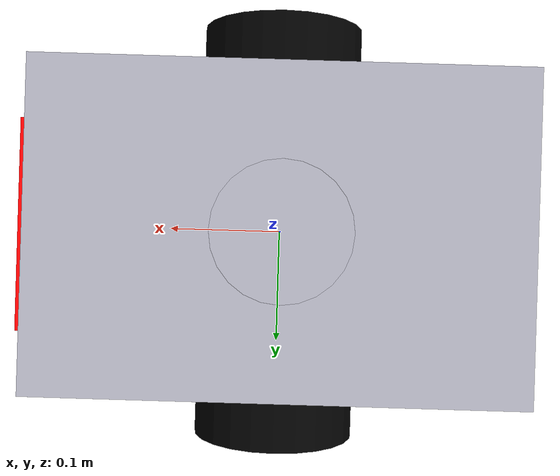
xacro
<?xml version="1.0"?>
<robot xmlns:xacro="http://www.ros.org/wiki/xacro" name="gpu_slam_bot">

  <!-- Robot parameters -->
  <xacro:property name="base_width" value="0.30"/>
  <xacro:property name="base_length" value="0.45"/>
  <xacro:property name="base_height" value="0.08"/>
  <xacro:property name="wheel_radius" value="0.08"/>
  <xacro:property name="wheel_width" value="0.06"/>
  <xacro:property name="wheel_separation" value="0.35"/>
  <xacro:property name="caster_radius" value="0.03"/>

  <!-- Materials -->
  <material name="metallic_gray"><color rgba="0.7 0.7 0.75 1"/></material>
  <material name="wheel_black"><color rgba="0 0 0 1"/></material>
  <material name="stripe_green"><color rgba="0 1 0 1"/></material>
  <material name="pusher_red"><color rgba="1 0 0 1"/></material>

  <!-- Base link -->
  <link name="base_link">
    <visual>
      <origin xyz="0 0 0" rpy="0 0 0"/>
      <geometry>
        <box size="${base_length} ${base_width} ${base_height}"/>
      </geometry>
      <material name="metallic_gray"/>
    </visual>
    <collision>
      <origin xyz="0 0 0" rpy="0 0 0"/>
      <geometry>
        <box size="${base_length} ${base_width} ${base_height}"/>
      </geometry>
    </collision>
    <inertial>
      <origin xyz="0 0 0"/>
      <mass value="3.0"/>
      <inertia ixx="${(1/12)*3.0*(base_width*base_width + base_height*base_height)}"
               iyy="${(1/12)*3.0*(base_length*base_length + base_height*base_height)}"
               izz="${(1/12)*3.0*(base_length*base_length + base_width*base_width)}"
               ixy="0" ixz="0" iyz="0"/>
    </inertial>
  </link>

  <!-- Lidar -->
  <link name="lidar_link">
    <visual>
      <origin xyz="0 0 0.03" rpy="0 0 0"/>
      <geometry>
        <cylinder length="0.06" radius="0.055"/>
      </geometry>
      <material name="metallic_gray"/>
    </visual>
    <collision>
      <origin xyz="0 0 0.03" rpy="0 0 0"/>
      <geometry>
        <cylinder length="0.06" radius="0.055"/>
      </geometry>
    </collision>
    <inertial>
      <origin xyz="0 0 0.03"/>
      <mass value="0.2"/>
      <inertia ixx="0.0004" iyy="0.0004" izz="0.0003" ixy="0" ixz="0" iyz="0"/>
    </inertial>
  </link>

  <joint name="lidar_joint" type="fixed">
    <parent link="base_link"/>
    <child link="lidar_link"/>
    <origin xyz="0 0 ${base_height/2 + 0.03}" rpy="0 0 0"/>
  </joint>

  <!-- Left Wheel - FIXED orientation and positioning -->
  <link name="wheel_left">
    <visual>
      <origin xyz="0 0 0" rpy="1.5708 0 0"/>
      <geometry>
        <cylinder length="${wheel_width}" radius="${wheel_radius}"/>
      </geometry>
      <material name="wheel_black"/>
    </visual>
    <collision>
      <origin xyz="0 0 0" rpy="1.5708 0 0"/>
      <geometry>
        <cylinder length="${wheel_width}" radius="${wheel_radius}"/>
      </geometry>
    </collision>
    <inertial>
      <origin xyz="0 0 0"/>
      <mass value="1.5"/>
      <inertia ixx="${(1/12)*1.5*(3*wheel_radius*wheel_radius + wheel_width*wheel_width)}"
               iyy="${0.5*1.5*wheel_radius*wheel_radius}"
               izz="${(1/12)*1.5*(3*wheel_radius*wheel_radius + wheel_width*wheel_width)}"
               ixy="0" ixz="0" iyz="0"/>
    </inertial>
  </link>

  <!-- Right Wheel - FIXED orientation and positioning -->
  <link name="wheel_right">
    <visual>
      <origin xyz="0 0 0" rpy="1.5708 0 0"/>
      <geometry>
        <cylinder length="${wheel_width}" radius="${wheel_radius}"/>
      </geometry>
      <material name="wheel_black"/>
    </visual>
    <collision>
      <origin xyz="0 0 0" rpy="1.5708 0 0"/>
      <geometry>
        <cylinder length="${wheel_width}" radius="${wheel_radius}"/>
      </geometry>
    </collision>
    <inertial>
      <origin xyz="0 0 0"/>
      <mass value="1.5"/>
      <inertia ixx="${(1/12)*1.5*(3*wheel_radius*wheel_radius + wheel_width*wheel_width)}"
               iyy="${0.5*1.5*wheel_radius*wheel_radius}"
               izz="${(1/12)*1.5*(3*wheel_radius*wheel_radius + wheel_width*wheel_width)}"
               ixy="0" ixz="0" iyz="0"/>
    </inertial>
  </link>

  <!-- Wheel joints - FIXED positioning and rotation axis -->
  <joint name="wheel_left_joint" type="continuous">
    <parent link="base_link"/>
    <child link="wheel_left"/>
    <origin xyz="0 ${wheel_separation/2} ${-wheel_radius}" rpy="0 0 0"/>
    <axis xyz="0 1 0"/>
    <dynamics damping="0.1" friction="0.1"/>
  </joint>

  <joint name="wheel_right_joint" type="continuous">
    <parent link="base_link"/>
    <child link="wheel_right"/>
    <origin xyz="0 ${-wheel_separation/2} ${-wheel_radius}" rpy="0 0 0"/>
    <axis xyz="0 1 0"/>
    <dynamics damping="0.1" friction="0.1"/>
  </joint>

  <!-- Caster - FIXED positioning -->
  <link name="caster_link">
    <visual>
      <origin xyz="0 0 0" rpy="0 0 0"/>
      <geometry><sphere radius="${caster_radius}"/></geometry>
      <material name="metallic_gray"/>
    </visual>
    <collision>
      <origin xyz="0 0 0" rpy="0 0 0"/>
      <geometry><sphere radius="${caster_radius}"/></geometry>
    </collision>
    <inertial>
      <origin xyz="0 0 0"/>
      <mass value="0.1"/>
      <inertia ixx="${(2/5)*0.1*caster_radius*caster_radius}"
               iyy="${(2/5)*0.1*caster_radius*caster_radius}"
               izz="${(2/5)*0.1*caster_radius*caster_radius}"
               ixy="0" ixz="0" iyz="0"/>
    </inertial>
  </link>

  <joint name="caster_joint" type="fixed">
    <parent link="base_link"/>
    <child link="caster_link"/>
    <origin xyz="-${base_length/2 - 0.05} 0 ${-wheel_radius + caster_radius - 0.005}" rpy="0 0 0"/>
  </joint>

  <!-- Front pusher -->
  <link name="front_pusher_link">
    <visual>
      <origin xyz="0 0 0" rpy="0 0 0"/>
      <geometry><box size="0.02 0.20 0.06"/></geometry>
      <material name="pusher_red"/>
    </visual>
    <collision>
      <origin xyz="0 0 0" rpy="0 0 0"/>
      <geometry><box size="0.02 0.20 0.06"/></geometry>
    </collision>
    <inertial>
      <origin xyz="0 0 0"/>
      <mass value="0.1"/>
      <inertia ixx="${(1/12)*0.1*(0.20*0.20 + 0.06*0.06)}"
               iyy="${(1/12)*0.1*(0.02*0.02 + 0.06*0.06)}"
               izz="${(1/12)*0.1*(0.02*0.02 + 0.20*0.20)}"
               ixy="0" ixz="0" iyz="0"/>
    </inertial>
  </link>

  <joint name="front_lifter_joint" type="prismatic">
    <parent link="base_link"/>
    <child link="front_pusher_link"/>
    <origin xyz="${base_length/2 + 0.01} 0 ${-base_height/2}" rpy="0 0 0"/>
    <axis xyz="0 0 1"/>
    <limit effort="10" velocity="0.1" lower="0.0" upper="0.25"/>
    <dynamics damping="2.0" friction="0.5"/>
  </joint>

  <!-- Gazebo diff_drive plugin -->
  <gazebo>
    <plugin name="diff_drive" filename="libgazebo_ros_diff_drive.so">
      <ros>
        <namespace>/</namespace>
      </ros>
      <update_rate>100</update_rate>
      <left_joint>wheel_left_joint</left_joint>
      <right_joint>wheel_right_joint</right_joint>
      <wheel_separation>${wheel_separation}</wheel_separation>
      <wheel_diameter>${2*wheel_radius}</wheel_diameter>
      <max_wheel_torque>50.0</max_wheel_torque>
      <max_wheel_acceleration>10.0</max_wheel_acceleration>
      <command_topic>cmd_vel</command_topic>
      <odometry_topic>odom</odometry_topic>
      <odometry_frame>odom</odometry_frame>
      <robot_base_frame>base_link</robot_base_frame>
      <publish_odom>true</publish_odom>
      <publish_wheel_tf>true</publish_wheel_tf>
      <publish_tf>true</publish_tf>
      <publish_odom_tf>true</publish_odom_tf>
    </plugin>
  </gazebo>

  <!-- Gazebo plugin for pusher control -->
  <gazebo>
    <plugin name="lifter_position_controller" filename="libgazebo_ros_joint_pose_trajectory.so">
      <ros>
        <namespace>/</namespace>
      </ros>
      <joint_name>front_lifter_joint</joint_name>
      <topic_name>front_lifter_cmd</topic_name>
    </plugin>
  </gazebo>

  <!-- Gazebo materials and physics -->
  <gazebo reference="base_link">
    <material>Gazebo/Grey</material>
  </gazebo>

  <gazebo reference="lidar_link">
    <material>Gazebo/Grey</material>
  </gazebo>

  <gazebo reference="front_pusher_link">
    <material>Gazebo/Red</material>
  </gazebo>

  <!-- Wheel physics properties -->
  <gazebo reference="wheel_left">
    <material>Gazebo/Black</material>
    <surface>
      <friction>
        <ode>
          <mu>1.0</mu>
          <mu2>1.0</mu2>
          <fdir1>1 0 0</fdir1>
        </ode>
      </friction>
    </surface>
  </gazebo>

  <gazebo reference="wheel_right">
    <material>Gazebo/Black</material>
    <surface>
      <friction>
        <ode>
          <mu>1.0</mu>
          <mu2>1.0</mu2>
          <fdir1>1 0 0</fdir1>
        </ode>
      </friction>
    </surface>
  </gazebo>

  <!-- Caster physics -->
  <gazebo reference="caster_link">
    <material>Gazebo/Grey</material>
    <surface>
      <friction>
        <ode>
          <mu>0.01</mu>
          <mu2>0.01</mu2>
        </ode>
      </friction>
    </surface>
  </gazebo>

</robot>
